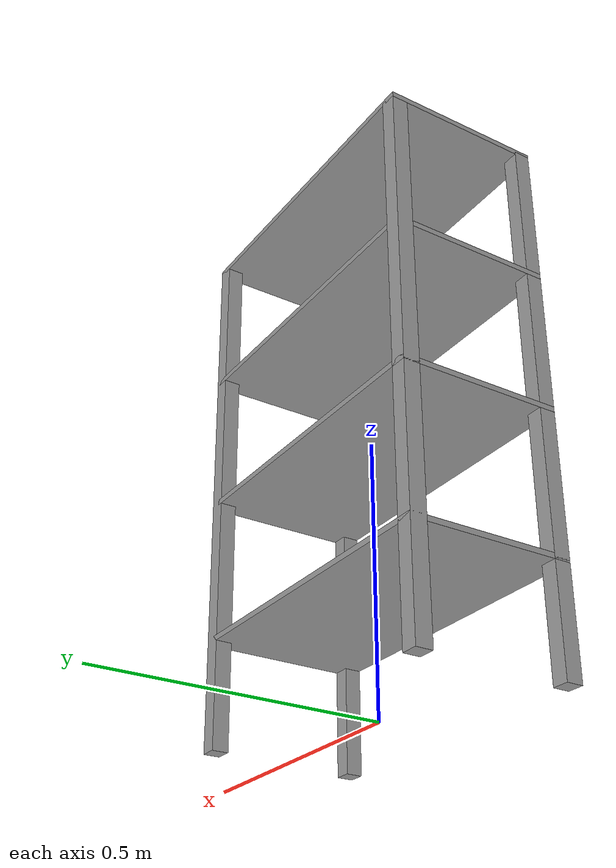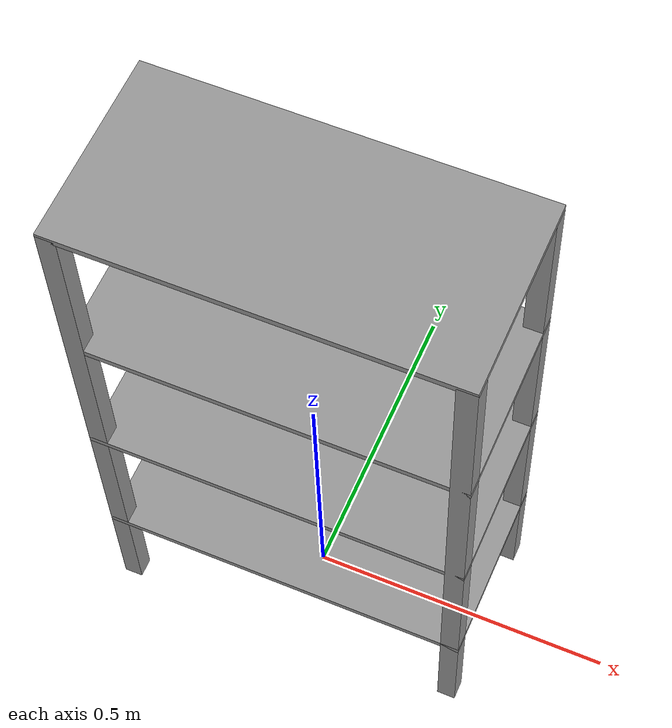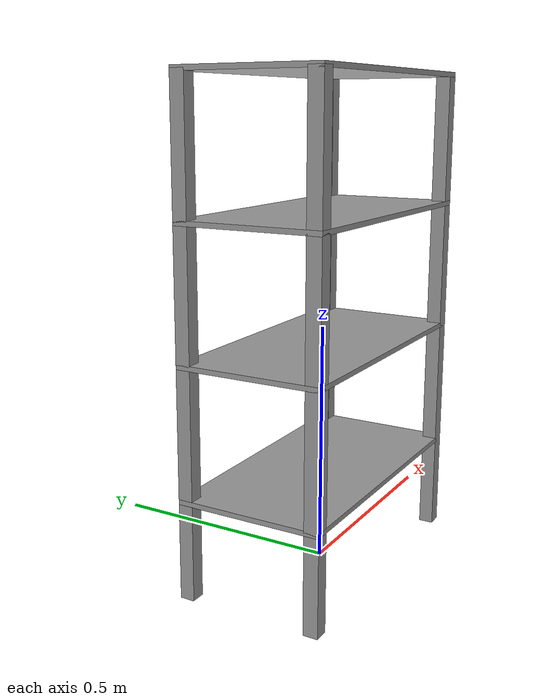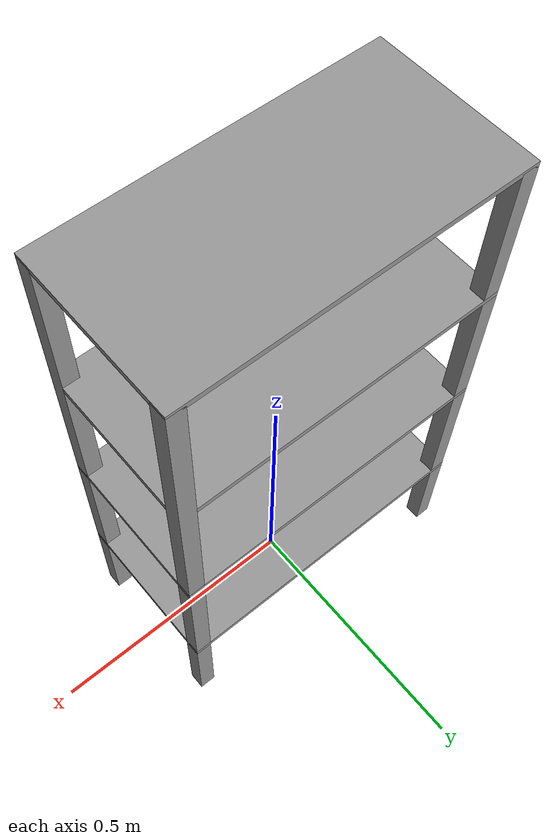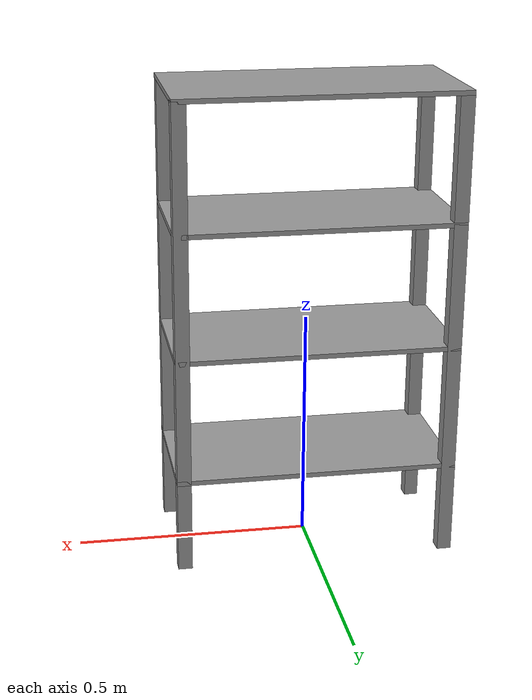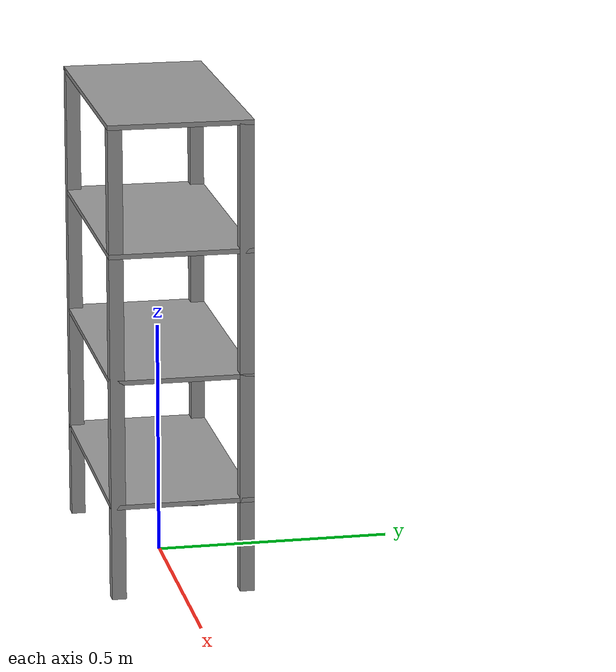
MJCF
<mujoco model="simple_shelf_4level">
    <compiler angle="degree" coordinate="local"/>
    <option integrator="RK4" timestep="0.002"/>

    <asset>
        <material name="shelf_mat" rgba="0.6 0.6 0.6 1.0" shininess="0.1"/>
    </asset>

    <worldbody>
        <body name="shelf" pos="0 0 0">
            <freejoint name="shelf_joint"/>
            <geom name="leg_fl" type="box" size="0.015 0.015 0.5" pos="-0.285 -0.135 0.5" material="shelf_mat" mass="0.5"/>
            <geom name="leg_fr" type="box" size="0.015 0.015 0.5" pos="0.285 -0.135 0.5" material="shelf_mat" mass="0.5"/>
            <geom name="leg_bl" type="box" size="0.015 0.015 0.5" pos="-0.285 0.135 0.5" material="shelf_mat" mass="0.5"/>
            <geom name="leg_br" type="box" size="0.015 0.015 0.5" pos="0.285 0.135 0.5" material="shelf_mat" mass="0.5"/>

            <geom name="shelf_level_1" type="box" size="0.3 0.15 0.005" pos="0 0 0.2" material="shelf_mat" mass="1.0"/>
            <geom name="shelf_level_2" type="box" size="0.3 0.15 0.005" pos="0 0 0.467" material="shelf_mat" mass="1.0"/>
            <geom name="shelf_level_3" type="box" size="0.3 0.15 0.005" pos="0 0 0.733" material="shelf_mat" mass="1.0"/>
            <geom name="shelf_level_4" type="box" size="0.3 0.15 0.005" pos="0 0 1.0" material="shelf_mat" mass="1.0"/>
        </body>
    </worldbody>
</mujoco>
